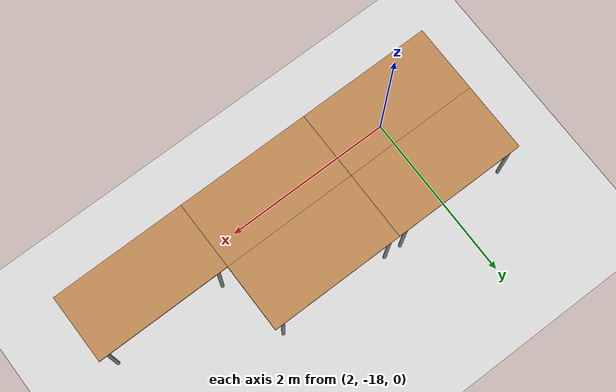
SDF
<sdf version="1.6">
 <world name="default">
  <model name="ground_plane">
   <static>1</static>
   <link name="link">
    <collision name="collision">
     <geometry><plane><normal>0 0 1</normal><size>100 100</size></plane></geometry>
     <surface><friction><ode><mu>100</mu><mu2>50</mu2></ode></friction></surface>
    </collision>
    <visual name="visual">
     <cast_shadows>0</cast_shadows>
     <geometry><plane><normal>0 0 1</normal><size>100 100</size></plane></geometry>
     <material>
      <script><uri>file://media/materials/scripts/gazebo.material</uri><name>Gazebo/Grey</name></script>
     </material>
    </visual>
   </link>
  </model>
  <model name="tablealt_0_clone_54">
   <link name="link">
    <inertial>
     <mass>1</mass>
     <inertia><ixx>1</ixx><ixy>0</ixy><ixz>0</ixz><iyy>1</iyy><iyz>0</iyz><izz>1</izz></inertia>
    </inertial>
    <visual name="back_right_leg">
     <pose>-0.68 -0.38 0.4 0 -0 0</pose>
     <geometry><cylinder><radius>0.02</radius><length>0.8</length></cylinder></geometry>
     <material>
      <script><uri>file://media/materials/scripts/gazebo.material</uri><name>Gazebo/Grey</name></script>
      <shader type="pixel"><normal_map>__default__</normal_map></shader>
      <ambient>0.3 0.3 0.3 1</ambient>
      <diffuse>0.7 0.7 0.7 1</diffuse>
      <specular>0.01 0.01 0.01 1</specular>
      <emissive>0 0 0 1</emissive>
     </material>
    </visual>
    <visual name="back_left_leg">
     <pose>-0.68 0.38 0.4 0 -0 0</pose>
     <geometry><cylinder><radius>0.02</radius><length>0.8</length></cylinder></geometry>
     <material>
      <script><uri>file://media/materials/scripts/gazebo.material</uri><name>Gazebo/Grey</name></script>
      <shader type="pixel"><normal_map>__default__</normal_map></shader>
      <ambient>0.3 0.3 0.3 1</ambient>
      <diffuse>0.7 0.7 0.7 1</diffuse>
      <specular>0.01 0.01 0.01 1</specular>
      <emissive>0 0 0 1</emissive>
     </material>
    </visual>
    <visual name="visual1">
     <pose>0 0 0.8 0 -0 0</pose>
     <geometry><box><size>1.57 0.8 0.03</size></box></geometry>
     <material>
      <script><uri>file://media/materials/scripts/gazebo.material</uri><name>Gazebo/Wood</name></script>
      <shader type="pixel"><normal_map>__default__</normal_map></shader>
      <ambient>0.92 0.92 0.68 1</ambient>
      <diffuse>1 1 1 1</diffuse>
      <specular>0.2 0.2 0.2 1</specular>
      <emissive>0 0 0 1</emissive>
     </material>
    </visual>
    <visual name="front_left_leg">
     <pose>0.68 0.38 0.4 0 -0 0</pose>
     <geometry><cylinder><radius>0.02</radius><length>0.8</length></cylinder></geometry>
     <material>
      <script><uri>file://media/materials/scripts/gazebo.material</uri><name>Gazebo/Grey</name></script>
      <shader type="pixel"><normal_map>__default__</normal_map></shader>
      <ambient>0.3 0.3 0.3 1</ambient>
      <diffuse>0.7 0.7 0.7 1</diffuse>
      <specular>0.01 0.01 0.01 1</specular>
      <emissive>0 0 0 1</emissive>
     </material>
    </visual>
    <visual name="front_right_leg">
     <pose>0.68 -0.38 0.4 0 -0 0</pose>
     <geometry><cylinder><radius>0.02</radius><length>0.8</length></cylinder></geometry>
     <material>
      <script><uri>file://media/materials/scripts/gazebo.material</uri><name>Gazebo/Grey</name></script>
      <shader type="pixel"><normal_map>__default__</normal_map></shader>
      <ambient>0.3 0.3 0.3 1</ambient>
      <diffuse>0.7 0.7 0.7 1</diffuse>
      <specular>0.01 0.01 0.01 1</specular>
      <emissive>0 0 0 1</emissive>
     </material>
    </visual>
    <collision name="front_right_leg">
     <pose>0.68 -0.38 0.4 0 -0 0</pose>
     <geometry><cylinder><radius>0.02</radius><length>0.8</length></cylinder></geometry>
     <surface>
      <friction>
       <ode><mu>1</mu><mu2>1</mu2><fdir1>0 0 0</fdir1><slip1>0</slip1><slip2>0</slip2></ode>
       <torsional>
        <coefficient>1</coefficient>
        <patch_radius>0</patch_radius>
        <surface_radius>0</surface_radius>
        <use_patch_radius>1</use_patch_radius>
        <ode><slip>0</slip></ode>
       </torsional>
      </friction>
      <bounce><restitution_coefficient>0</restitution_coefficient><threshold>1e+06</threshold></bounce>
      <contact>
       <collide_without_contact>0</collide_without_contact>
       <collide_without_contact_bitmask>1</collide_without_contact_bitmask>
       <collide_bitmask>1</collide_bitmask>
       <ode>
        <soft_cfm>0</soft_cfm>
        <soft_erp>0.2</soft_erp>
        <kp>1e+13</kp>
        <kd>1</kd>
        <max_vel>0.01</max_vel>
        <min_depth>0</min_depth>
       </ode>
       <bullet>
        <split_impulse>1</split_impulse>
        <split_impulse_penetration_threshold>-0.01</split_impulse_penetration_threshold>
        <soft_cfm>0</soft_cfm>
        <soft_erp>0.2</soft_erp>
        <kp>1e+13</kp>
        <kd>1</kd>
       </bullet>
      </contact>
     </surface>
    </collision>
    <collision name="surface">
     <pose>0 0 0.8 0 -0 0</pose>
     <geometry><box><size>1.5 0.8 0.03</size></box></geometry>
     <surface>
      <friction>
       <ode><mu>0.6</mu><mu2>0.6</mu2><fdir1>0 0 0</fdir1><slip1>0</slip1><slip2>0</slip2></ode>
       <torsional>
        <coefficient>1</coefficient>
        <patch_radius>0</patch_radius>
        <surface_radius>0</surface_radius>
        <use_patch_radius>1</use_patch_radius>
        <ode><slip>0</slip></ode>
       </torsional>
      </friction>
      <bounce><restitution_coefficient>0</restitution_coefficient><threshold>1e+06</threshold></bounce>
      <contact>
       <collide_without_contact>0</collide_without_contact>
       <collide_without_contact_bitmask>1</collide_without_contact_bitmask>
       <collide_bitmask>1</collide_bitmask>
       <ode>
        <soft_cfm>0</soft_cfm>
        <soft_erp>0.2</soft_erp>
        <kp>1e+13</kp>
        <kd>1</kd>
        <max_vel>0.01</max_vel>
        <min_depth>0</min_depth>
       </ode>
       <bullet>
        <split_impulse>1</split_impulse>
        <split_impulse_penetration_threshold>-0.01</split_impulse_penetration_threshold>
        <soft_cfm>0</soft_cfm>
        <soft_erp>0.2</soft_erp>
        <kp>1e+13</kp>
        <kd>1</kd>
       </bullet>
      </contact>
     </surface>
    </collision>
    <collision name="front_left_leg">
     <pose>0.68 0.38 0.4 0 -0 0</pose>
     <geometry><cylinder><radius>0.02</radius><length>0.8</length></cylinder></geometry>
     <surface>
      <friction>
       <ode><mu>1</mu><mu2>1</mu2><fdir1>0 0 0</fdir1><slip1>0</slip1><slip2>0</slip2></ode>
       <torsional>
        <coefficient>1</coefficient>
        <patch_radius>0</patch_radius>
        <surface_radius>0</surface_radius>
        <use_patch_radius>1</use_patch_radius>
        <ode><slip>0</slip></ode>
       </torsional>
      </friction>
      <bounce><restitution_coefficient>0</restitution_coefficient><threshold>1e+06</threshold></bounce>
      <contact>
       <collide_without_contact>0</collide_without_contact>
       <collide_without_contact_bitmask>1</collide_without_contact_bitmask>
       <collide_bitmask>1</collide_bitmask>
       <ode>
        <soft_cfm>0</soft_cfm>
        <soft_erp>0.2</soft_erp>
        <kp>1e+13</kp>
        <kd>1</kd>
        <max_vel>0.01</max_vel>
        <min_depth>0</min_depth>
       </ode>
       <bullet>
        <split_impulse>1</split_impulse>
        <split_impulse_penetration_threshold>-0.01</split_impulse_penetration_threshold>
        <soft_cfm>0</soft_cfm>
        <soft_erp>0.2</soft_erp>
        <kp>1e+13</kp>
        <kd>1</kd>
       </bullet>
      </contact>
     </surface>
    </collision>
    <collision name="back_left_leg">
     <pose>-0.68 0.38 0.4 0 -0 0</pose>
     <geometry><cylinder><radius>0.02</radius><length>0.8</length></cylinder></geometry>
     <surface>
      <friction>
       <ode><mu>1</mu><mu2>1</mu2><fdir1>0 0 0</fdir1><slip1>0</slip1><slip2>0</slip2></ode>
       <torsional>
        <coefficient>1</coefficient>
        <patch_radius>0</patch_radius>
        <surface_radius>0</surface_radius>
        <use_patch_radius>1</use_patch_radius>
        <ode><slip>0</slip></ode>
       </torsional>
      </friction>
      <bounce><restitution_coefficient>0</restitution_coefficient><threshold>1e+06</threshold></bounce>
      <contact>
       <collide_without_contact>0</collide_without_contact>
       <collide_without_contact_bitmask>1</collide_without_contact_bitmask>
       <collide_bitmask>1</collide_bitmask>
       <ode>
        <soft_cfm>0</soft_cfm>
        <soft_erp>0.2</soft_erp>
        <kp>1e+13</kp>
        <kd>1</kd>
        <max_vel>0.01</max_vel>
        <min_depth>0</min_depth>
       </ode>
       <bullet>
        <split_impulse>1</split_impulse>
        <split_impulse_penetration_threshold>-0.01</split_impulse_penetration_threshold>
        <soft_cfm>0</soft_cfm>
        <soft_erp>0.2</soft_erp>
        <kp>1e+13</kp>
        <kd>1</kd>
       </bullet>
      </contact>
     </surface>
    </collision>
    <collision name="back_right_leg">
     <pose>-0.68 -0.38 0.4 0 -0 0</pose>
     <geometry><cylinder><radius>0.02</radius><length>0.8</length></cylinder></geometry>
     <surface>
      <friction>
       <ode><mu>1</mu><mu2>1</mu2><fdir1>0 0 0</fdir1><slip1>0</slip1><slip2>0</slip2></ode>
       <torsional>
        <coefficient>1</coefficient>
        <patch_radius>0</patch_radius>
        <surface_radius>0</surface_radius>
        <use_patch_radius>1</use_patch_radius>
        <ode><slip>0</slip></ode>
       </torsional>
      </friction>
      <bounce><restitution_coefficient>0</restitution_coefficient><threshold>1e+06</threshold></bounce>
      <contact>
       <collide_without_contact>0</collide_without_contact>
       <collide_without_contact_bitmask>1</collide_without_contact_bitmask>
       <collide_bitmask>1</collide_bitmask>
       <ode>
        <soft_cfm>0</soft_cfm>
        <soft_erp>0.2</soft_erp>
        <kp>1e+13</kp>
        <kd>1</kd>
        <max_vel>0.01</max_vel>
        <min_depth>0</min_depth>
       </ode>
       <bullet>
        <split_impulse>1</split_impulse>
        <split_impulse_penetration_threshold>-0.01</split_impulse_penetration_threshold>
        <soft_cfm>0</soft_cfm>
        <soft_erp>0.2</soft_erp>
        <kp>1e+13</kp>
        <kd>1</kd>
       </bullet>
      </contact>
     </surface>
    </collision>
   </link>
   <static>1</static>
   <pose>1.98 -17.2 0 0 -0 0</pose>
  </model>
  <model name="tablealt_0_clone_55">
   <link name="link">
    <inertial>
     <mass>1</mass>
     <inertia><ixx>1</ixx><ixy>0</ixy><ixz>0</ixz><iyy>1</iyy><iyz>0</iyz><izz>1</izz></inertia>
    </inertial>
    <visual name="back_right_leg">
     <pose>-0.68 -0.38 0.4 0 -0 0</pose>
     <geometry><cylinder><radius>0.02</radius><length>0.8</length></cylinder></geometry>
     <material>
      <script><uri>file://media/materials/scripts/gazebo.material</uri><name>Gazebo/Grey</name></script>
      <shader type="pixel"><normal_map>__default__</normal_map></shader>
      <ambient>0.3 0.3 0.3 1</ambient>
      <diffuse>0.7 0.7 0.7 1</diffuse>
      <specular>0.01 0.01 0.01 1</specular>
      <emissive>0 0 0 1</emissive>
     </material>
    </visual>
    <visual name="back_left_leg">
     <pose>-0.68 0.38 0.4 0 -0 0</pose>
     <geometry><cylinder><radius>0.02</radius><length>0.8</length></cylinder></geometry>
     <material>
      <script><uri>file://media/materials/scripts/gazebo.material</uri><name>Gazebo/Grey</name></script>
      <shader type="pixel"><normal_map>__default__</normal_map></shader>
      <ambient>0.3 0.3 0.3 1</ambient>
      <diffuse>0.7 0.7 0.7 1</diffuse>
      <specular>0.01 0.01 0.01 1</specular>
      <emissive>0 0 0 1</emissive>
     </material>
    </visual>
    <visual name="visual1">
     <pose>0 0 0.8 0 -0 0</pose>
     <geometry><box><size>1.57 0.8 0.03</size></box></geometry>
     <material>
      <script><uri>file://media/materials/scripts/gazebo.material</uri><name>Gazebo/Wood</name></script>
      <shader type="pixel"><normal_map>__default__</normal_map></shader>
      <ambient>0.92 0.92 0.68 1</ambient>
      <diffuse>1 1 1 1</diffuse>
      <specular>0.2 0.2 0.2 1</specular>
      <emissive>0 0 0 1</emissive>
     </material>
    </visual>
    <visual name="front_left_leg">
     <pose>0.68 0.38 0.4 0 -0 0</pose>
     <geometry><cylinder><radius>0.02</radius><length>0.8</length></cylinder></geometry>
     <material>
      <script><uri>file://media/materials/scripts/gazebo.material</uri><name>Gazebo/Grey</name></script>
      <shader type="pixel"><normal_map>__default__</normal_map></shader>
      <ambient>0.3 0.3 0.3 1</ambient>
      <diffuse>0.7 0.7 0.7 1</diffuse>
      <specular>0.01 0.01 0.01 1</specular>
      <emissive>0 0 0 1</emissive>
     </material>
    </visual>
    <visual name="front_right_leg">
     <pose>0.68 -0.38 0.4 0 -0 0</pose>
     <geometry><cylinder><radius>0.02</radius><length>0.8</length></cylinder></geometry>
     <material>
      <script><uri>file://media/materials/scripts/gazebo.material</uri><name>Gazebo/Grey</name></script>
      <shader type="pixel"><normal_map>__default__</normal_map></shader>
      <ambient>0.3 0.3 0.3 1</ambient>
      <diffuse>0.7 0.7 0.7 1</diffuse>
      <specular>0.01 0.01 0.01 1</specular>
      <emissive>0 0 0 1</emissive>
     </material>
    </visual>
    <collision name="front_right_leg">
     <pose>0.68 -0.38 0.4 0 -0 0</pose>
     <geometry><cylinder><radius>0.02</radius><length>0.8</length></cylinder></geometry>
     <surface>
      <friction>
       <ode><mu>1</mu><mu2>1</mu2><fdir1>0 0 0</fdir1><slip1>0</slip1><slip2>0</slip2></ode>
       <torsional>
        <coefficient>1</coefficient>
        <patch_radius>0</patch_radius>
        <surface_radius>0</surface_radius>
        <use_patch_radius>1</use_patch_radius>
        <ode><slip>0</slip></ode>
       </torsional>
      </friction>
      <bounce><restitution_coefficient>0</restitution_coefficient><threshold>1e+06</threshold></bounce>
      <contact>
       <collide_without_contact>0</collide_without_contact>
       <collide_without_contact_bitmask>1</collide_without_contact_bitmask>
       <collide_bitmask>1</collide_bitmask>
       <ode>
        <soft_cfm>0</soft_cfm>
        <soft_erp>0.2</soft_erp>
        <kp>1e+13</kp>
        <kd>1</kd>
        <max_vel>0.01</max_vel>
        <min_depth>0</min_depth>
       </ode>
       <bullet>
        <split_impulse>1</split_impulse>
        <split_impulse_penetration_threshold>-0.01</split_impulse_penetration_threshold>
        <soft_cfm>0</soft_cfm>
        <soft_erp>0.2</soft_erp>
        <kp>1e+13</kp>
        <kd>1</kd>
       </bullet>
      </contact>
     </surface>
    </collision>
    <collision name="surface">
     <pose>0 0 0.8 0 -0 0</pose>
     <geometry><box><size>1.5 0.8 0.03</size></box></geometry>
     <surface>
      <friction>
       <ode><mu>0.6</mu><mu2>0.6</mu2><fdir1>0 0 0</fdir1><slip1>0</slip1><slip2>0</slip2></ode>
       <torsional>
        <coefficient>1</coefficient>
        <patch_radius>0</patch_radius>
        <surface_radius>0</surface_radius>
        <use_patch_radius>1</use_patch_radius>
        <ode><slip>0</slip></ode>
       </torsional>
      </friction>
      <bounce><restitution_coefficient>0</restitution_coefficient><threshold>1e+06</threshold></bounce>
      <contact>
       <collide_without_contact>0</collide_without_contact>
       <collide_without_contact_bitmask>1</collide_without_contact_bitmask>
       <collide_bitmask>1</collide_bitmask>
       <ode>
        <soft_cfm>0</soft_cfm>
        <soft_erp>0.2</soft_erp>
        <kp>1e+13</kp>
        <kd>1</kd>
        <max_vel>0.01</max_vel>
        <min_depth>0</min_depth>
       </ode>
       <bullet>
        <split_impulse>1</split_impulse>
        <split_impulse_penetration_threshold>-0.01</split_impulse_penetration_threshold>
        <soft_cfm>0</soft_cfm>
        <soft_erp>0.2</soft_erp>
        <kp>1e+13</kp>
        <kd>1</kd>
       </bullet>
      </contact>
     </surface>
    </collision>
    <collision name="front_left_leg">
     <pose>0.68 0.38 0.4 0 -0 0</pose>
     <geometry><cylinder><radius>0.02</radius><length>0.8</length></cylinder></geometry>
     <surface>
      <friction>
       <ode><mu>1</mu><mu2>1</mu2><fdir1>0 0 0</fdir1><slip1>0</slip1><slip2>0</slip2></ode>
       <torsional>
        <coefficient>1</coefficient>
        <patch_radius>0</patch_radius>
        <surface_radius>0</surface_radius>
        <use_patch_radius>1</use_patch_radius>
        <ode><slip>0</slip></ode>
       </torsional>
      </friction>
      <bounce><restitution_coefficient>0</restitution_coefficient><threshold>1e+06</threshold></bounce>
      <contact>
       <collide_without_contact>0</collide_without_contact>
       <collide_without_contact_bitmask>1</collide_without_contact_bitmask>
       <collide_bitmask>1</collide_bitmask>
       <ode>
        <soft_cfm>0</soft_cfm>
        <soft_erp>0.2</soft_erp>
        <kp>1e+13</kp>
        <kd>1</kd>
        <max_vel>0.01</max_vel>
        <min_depth>0</min_depth>
       </ode>
       <bullet>
        <split_impulse>1</split_impulse>
        <split_impulse_penetration_threshold>-0.01</split_impulse_penetration_threshold>
        <soft_cfm>0</soft_cfm>
        <soft_erp>0.2</soft_erp>
        <kp>1e+13</kp>
        <kd>1</kd>
       </bullet>
      </contact>
     </surface>
    </collision>
    <collision name="back_left_leg">
     <pose>-0.68 0.38 0.4 0 -0 0</pose>
     <geometry><cylinder><radius>0.02</radius><length>0.8</length></cylinder></geometry>
     <surface>
      <friction>
       <ode><mu>1</mu><mu2>1</mu2><fdir1>0 0 0</fdir1><slip1>0</slip1><slip2>0</slip2></ode>
       <torsional>
        <coefficient>1</coefficient>
        <patch_radius>0</patch_radius>
        <surface_radius>0</surface_radius>
        <use_patch_radius>1</use_patch_radius>
        <ode><slip>0</slip></ode>
       </torsional>
      </friction>
      <bounce><restitution_coefficient>0</restitution_coefficient><threshold>1e+06</threshold></bounce>
      <contact>
       <collide_without_contact>0</collide_without_contact>
       <collide_without_contact_bitmask>1</collide_without_contact_bitmask>
       <collide_bitmask>1</collide_bitmask>
       <ode>
        <soft_cfm>0</soft_cfm>
        <soft_erp>0.2</soft_erp>
        <kp>1e+13</kp>
        <kd>1</kd>
        <max_vel>0.01</max_vel>
        <min_depth>0</min_depth>
       </ode>
       <bullet>
        <split_impulse>1</split_impulse>
        <split_impulse_penetration_threshold>-0.01</split_impulse_penetration_threshold>
        <soft_cfm>0</soft_cfm>
        <soft_erp>0.2</soft_erp>
        <kp>1e+13</kp>
        <kd>1</kd>
       </bullet>
      </contact>
     </surface>
    </collision>
    <collision name="back_right_leg">
     <pose>-0.68 -0.38 0.4 0 -0 0</pose>
     <geometry><cylinder><radius>0.02</radius><length>0.8</length></cylinder></geometry>
     <surface>
      <friction>
       <ode><mu>1</mu><mu2>1</mu2><fdir1>0 0 0</fdir1><slip1>0</slip1><slip2>0</slip2></ode>
       <torsional>
        <coefficient>1</coefficient>
        <patch_radius>0</patch_radius>
        <surface_radius>0</surface_radius>
        <use_patch_radius>1</use_patch_radius>
        <ode><slip>0</slip></ode>
       </torsional>
      </friction>
      <bounce><restitution_coefficient>0</restitution_coefficient><threshold>1e+06</threshold></bounce>
      <contact>
       <collide_without_contact>0</collide_without_contact>
       <collide_without_contact_bitmask>1</collide_without_contact_bitmask>
       <collide_bitmask>1</collide_bitmask>
       <ode>
        <soft_cfm>0</soft_cfm>
        <soft_erp>0.2</soft_erp>
        <kp>1e+13</kp>
        <kd>1</kd>
        <max_vel>0.01</max_vel>
        <min_depth>0</min_depth>
       </ode>
       <bullet>
        <split_impulse>1</split_impulse>
        <split_impulse_penetration_threshold>-0.01</split_impulse_penetration_threshold>
        <soft_cfm>0</soft_cfm>
        <soft_erp>0.2</soft_erp>
        <kp>1e+13</kp>
        <kd>1</kd>
       </bullet>
      </contact>
     </surface>
    </collision>
   </link>
   <static>1</static>
   <pose>3.55 -17.2 0 0 -0 0</pose>
  </model>
  <model name="tablealt_0_clone_57">
   <link name="link">
    <inertial>
     <mass>1</mass>
     <inertia><ixx>1</ixx><ixy>0</ixy><ixz>0</ixz><iyy>1</iyy><iyz>0</iyz><izz>1</izz></inertia>
    </inertial>
    <visual name="back_right_leg">
     <pose>-0.68 -0.38 0.4 0 -0 0</pose>
     <geometry><cylinder><radius>0.02</radius><length>0.8</length></cylinder></geometry>
     <material>
      <script><uri>file://media/materials/scripts/gazebo.material</uri><name>Gazebo/Grey</name></script>
      <shader type="pixel"><normal_map>__default__</normal_map></shader>
      <ambient>0.3 0.3 0.3 1</ambient>
      <diffuse>0.7 0.7 0.7 1</diffuse>
      <specular>0.01 0.01 0.01 1</specular>
      <emissive>0 0 0 1</emissive>
     </material>
    </visual>
    <visual name="back_left_leg">
     <pose>-0.68 0.38 0.4 0 -0 0</pose>
     <geometry><cylinder><radius>0.02</radius><length>0.8</length></cylinder></geometry>
     <material>
      <script><uri>file://media/materials/scripts/gazebo.material</uri><name>Gazebo/Grey</name></script>
      <shader type="pixel"><normal_map>__default__</normal_map></shader>
      <ambient>0.3 0.3 0.3 1</ambient>
      <diffuse>0.7 0.7 0.7 1</diffuse>
      <specular>0.01 0.01 0.01 1</specular>
      <emissive>0 0 0 1</emissive>
     </material>
    </visual>
    <visual name="visual1">
     <pose>0 0 0.8 0 -0 0</pose>
     <geometry><box><size>1.57 0.8 0.03</size></box></geometry>
     <material>
      <script><uri>file://media/materials/scripts/gazebo.material</uri><name>Gazebo/Wood</name></script>
      <shader type="pixel"><normal_map>__default__</normal_map></shader>
      <ambient>0.92 0.92 0.68 1</ambient>
      <diffuse>1 1 1 1</diffuse>
      <specular>0.2 0.2 0.2 1</specular>
      <emissive>0 0 0 1</emissive>
     </material>
    </visual>
    <visual name="front_left_leg">
     <pose>0.68 0.38 0.4 0 -0 0</pose>
     <geometry><cylinder><radius>0.02</radius><length>0.8</length></cylinder></geometry>
     <material>
      <script><uri>file://media/materials/scripts/gazebo.material</uri><name>Gazebo/Grey</name></script>
      <shader type="pixel"><normal_map>__default__</normal_map></shader>
      <ambient>0.3 0.3 0.3 1</ambient>
      <diffuse>0.7 0.7 0.7 1</diffuse>
      <specular>0.01 0.01 0.01 1</specular>
      <emissive>0 0 0 1</emissive>
     </material>
    </visual>
    <visual name="front_right_leg">
     <pose>0.68 -0.38 0.4 0 -0 0</pose>
     <geometry><cylinder><radius>0.02</radius><length>0.8</length></cylinder></geometry>
     <material>
      <script><uri>file://media/materials/scripts/gazebo.material</uri><name>Gazebo/Grey</name></script>
      <shader type="pixel"><normal_map>__default__</normal_map></shader>
      <ambient>0.3 0.3 0.3 1</ambient>
      <diffuse>0.7 0.7 0.7 1</diffuse>
      <specular>0.01 0.01 0.01 1</specular>
      <emissive>0 0 0 1</emissive>
     </material>
    </visual>
    <collision name="front_right_leg">
     <pose>0.68 -0.38 0.4 0 -0 0</pose>
     <geometry><cylinder><radius>0.02</radius><length>0.8</length></cylinder></geometry>
     <surface>
      <friction>
       <ode><mu>1</mu><mu2>1</mu2><fdir1>0 0 0</fdir1><slip1>0</slip1><slip2>0</slip2></ode>
       <torsional>
        <coefficient>1</coefficient>
        <patch_radius>0</patch_radius>
        <surface_radius>0</surface_radius>
        <use_patch_radius>1</use_patch_radius>
        <ode><slip>0</slip></ode>
       </torsional>
      </friction>
      <bounce><restitution_coefficient>0</restitution_coefficient><threshold>1e+06</threshold></bounce>
      <contact>
       <collide_without_contact>0</collide_without_contact>
       <collide_without_contact_bitmask>1</collide_without_contact_bitmask>
       <collide_bitmask>1</collide_bitmask>
       <ode>
        <soft_cfm>0</soft_cfm>
        <soft_erp>0.2</soft_erp>
        <kp>1e+13</kp>
        <kd>1</kd>
        <max_vel>0.01</max_vel>
        <min_depth>0</min_depth>
       </ode>
       <bullet>
        <split_impulse>1</split_impulse>
        <split_impulse_penetration_threshold>-0.01</split_impulse_penetration_threshold>
        <soft_cfm>0</soft_cfm>
        <soft_erp>0.2</soft_erp>
        <kp>1e+13</kp>
        <kd>1</kd>
       </bullet>
      </contact>
     </surface>
    </collision>
    <collision name="surface">
     <pose>0 0 0.8 0 -0 0</pose>
     <geometry><box><size>1.5 0.8 0.03</size></box></geometry>
     <surface>
      <friction>
       <ode><mu>0.6</mu><mu2>0.6</mu2><fdir1>0 0 0</fdir1><slip1>0</slip1><slip2>0</slip2></ode>
       <torsional>
        <coefficient>1</coefficient>
        <patch_radius>0</patch_radius>
        <surface_radius>0</surface_radius>
        <use_patch_radius>1</use_patch_radius>
        <ode><slip>0</slip></ode>
       </torsional>
      </friction>
      <bounce><restitution_coefficient>0</restitution_coefficient><threshold>1e+06</threshold></bounce>
      <contact>
       <collide_without_contact>0</collide_without_contact>
       <collide_without_contact_bitmask>1</collide_without_contact_bitmask>
       <collide_bitmask>1</collide_bitmask>
       <ode>
        <soft_cfm>0</soft_cfm>
        <soft_erp>0.2</soft_erp>
        <kp>1e+13</kp>
        <kd>1</kd>
        <max_vel>0.01</max_vel>
        <min_depth>0</min_depth>
       </ode>
       <bullet>
        <split_impulse>1</split_impulse>
        <split_impulse_penetration_threshold>-0.01</split_impulse_penetration_threshold>
        <soft_cfm>0</soft_cfm>
        <soft_erp>0.2</soft_erp>
        <kp>1e+13</kp>
        <kd>1</kd>
       </bullet>
      </contact>
     </surface>
    </collision>
    <collision name="front_left_leg">
     <pose>0.68 0.38 0.4 0 -0 0</pose>
     <geometry><cylinder><radius>0.02</radius><length>0.8</length></cylinder></geometry>
     <surface>
      <friction>
       <ode><mu>1</mu><mu2>1</mu2><fdir1>0 0 0</fdir1><slip1>0</slip1><slip2>0</slip2></ode>
       <torsional>
        <coefficient>1</coefficient>
        <patch_radius>0</patch_radius>
        <surface_radius>0</surface_radius>
        <use_patch_radius>1</use_patch_radius>
        <ode><slip>0</slip></ode>
       </torsional>
      </friction>
      <bounce><restitution_coefficient>0</restitution_coefficient><threshold>1e+06</threshold></bounce>
      <contact>
       <collide_without_contact>0</collide_without_contact>
       <collide_without_contact_bitmask>1</collide_without_contact_bitmask>
       <collide_bitmask>1</collide_bitmask>
       <ode>
        <soft_cfm>0</soft_cfm>
        <soft_erp>0.2</soft_erp>
        <kp>1e+13</kp>
        <kd>1</kd>
        <max_vel>0.01</max_vel>
        <min_depth>0</min_depth>
       </ode>
       <bullet>
        <split_impulse>1</split_impulse>
        <split_impulse_penetration_threshold>-0.01</split_impulse_penetration_threshold>
        <soft_cfm>0</soft_cfm>
        <soft_erp>0.2</soft_erp>
        <kp>1e+13</kp>
        <kd>1</kd>
       </bullet>
      </contact>
     </surface>
    </collision>
    <collision name="back_left_leg">
     <pose>-0.68 0.38 0.4 0 -0 0</pose>
     <geometry><cylinder><radius>0.02</radius><length>0.8</length></cylinder></geometry>
     <surface>
      <friction>
       <ode><mu>1</mu><mu2>1</mu2><fdir1>0 0 0</fdir1><slip1>0</slip1><slip2>0</slip2></ode>
       <torsional>
        <coefficient>1</coefficient>
        <patch_radius>0</patch_radius>
        <surface_radius>0</surface_radius>
        <use_patch_radius>1</use_patch_radius>
        <ode><slip>0</slip></ode>
       </torsional>
      </friction>
      <bounce><restitution_coefficient>0</restitution_coefficient><threshold>1e+06</threshold></bounce>
      <contact>
       <collide_without_contact>0</collide_without_contact>
       <collide_without_contact_bitmask>1</collide_without_contact_bitmask>
       <collide_bitmask>1</collide_bitmask>
       <ode>
        <soft_cfm>0</soft_cfm>
        <soft_erp>0.2</soft_erp>
        <kp>1e+13</kp>
        <kd>1</kd>
        <max_vel>0.01</max_vel>
        <min_depth>0</min_depth>
       </ode>
       <bullet>
        <split_impulse>1</split_impulse>
        <split_impulse_penetration_threshold>-0.01</split_impulse_penetration_threshold>
        <soft_cfm>0</soft_cfm>
        <soft_erp>0.2</soft_erp>
        <kp>1e+13</kp>
        <kd>1</kd>
       </bullet>
      </contact>
     </surface>
    </collision>
    <collision name="back_right_leg">
     <pose>-0.68 -0.38 0.4 0 -0 0</pose>
     <geometry><cylinder><radius>0.02</radius><length>0.8</length></cylinder></geometry>
     <surface>
      <friction>
       <ode><mu>1</mu><mu2>1</mu2><fdir1>0 0 0</fdir1><slip1>0</slip1><slip2>0</slip2></ode>
       <torsional>
        <coefficient>1</coefficient>
        <patch_radius>0</patch_radius>
        <surface_radius>0</surface_radius>
        <use_patch_radius>1</use_patch_radius>
        <ode><slip>0</slip></ode>
       </torsional>
      </friction>
      <bounce><restitution_coefficient>0</restitution_coefficient><threshold>1e+06</threshold></bounce>
      <contact>
       <collide_without_contact>0</collide_without_contact>
       <collide_without_contact_bitmask>1</collide_without_contact_bitmask>
       <collide_bitmask>1</collide_bitmask>
       <ode>
        <soft_cfm>0</soft_cfm>
        <soft_erp>0.2</soft_erp>
        <kp>1e+13</kp>
        <kd>1</kd>
        <max_vel>0.01</max_vel>
        <min_depth>0</min_depth>
       </ode>
       <bullet>
        <split_impulse>1</split_impulse>
        <split_impulse_penetration_threshold>-0.01</split_impulse_penetration_threshold>
        <soft_cfm>0</soft_cfm>
        <soft_erp>0.2</soft_erp>
        <kp>1e+13</kp>
        <kd>1</kd>
       </bullet>
      </contact>
     </surface>
    </collision>
   </link>
   <static>1</static>
   <pose>5.12 -18 0 0 -0 0</pose>
  </model>
  <model name="tablealt_0_clone_58">
   <link name="link">
    <inertial>
     <mass>1</mass>
     <inertia><ixx>1</ixx><ixy>0</ixy><ixz>0</ixz><iyy>1</iyy><iyz>0</iyz><izz>1</izz></inertia>
    </inertial>
    <visual name="back_right_leg">
     <pose>-0.68 -0.38 0.4 0 -0 0</pose>
     <geometry><cylinder><radius>0.02</radius><length>0.8</length></cylinder></geometry>
     <material>
      <script><uri>file://media/materials/scripts/gazebo.material</uri><name>Gazebo/Grey</name></script>
      <shader type="pixel"><normal_map>__default__</normal_map></shader>
      <ambient>0.3 0.3 0.3 1</ambient>
      <diffuse>0.7 0.7 0.7 1</diffuse>
      <specular>0.01 0.01 0.01 1</specular>
      <emissive>0 0 0 1</emissive>
     </material>
    </visual>
    <visual name="back_left_leg">
     <pose>-0.68 0.38 0.4 0 -0 0</pose>
     <geometry><cylinder><radius>0.02</radius><length>0.8</length></cylinder></geometry>
     <material>
      <script><uri>file://media/materials/scripts/gazebo.material</uri><name>Gazebo/Grey</name></script>
      <shader type="pixel"><normal_map>__default__</normal_map></shader>
      <ambient>0.3 0.3 0.3 1</ambient>
      <diffuse>0.7 0.7 0.7 1</diffuse>
      <specular>0.01 0.01 0.01 1</specular>
      <emissive>0 0 0 1</emissive>
     </material>
    </visual>
    <visual name="visual1">
     <pose>0 0 0.8 0 -0 0</pose>
     <geometry><box><size>1.57 0.8 0.03</size></box></geometry>
     <material>
      <script><uri>file://media/materials/scripts/gazebo.material</uri><name>Gazebo/Wood</name></script>
      <shader type="pixel"><normal_map>__default__</normal_map></shader>
      <ambient>0.92 0.92 0.68 1</ambient>
      <diffuse>1 1 1 1</diffuse>
      <specular>0.2 0.2 0.2 1</specular>
      <emissive>0 0 0 1</emissive>
     </material>
    </visual>
    <visual name="front_left_leg">
     <pose>0.68 0.38 0.4 0 -0 0</pose>
     <geometry><cylinder><radius>0.02</radius><length>0.8</length></cylinder></geometry>
     <material>
      <script><uri>file://media/materials/scripts/gazebo.material</uri><name>Gazebo/Grey</name></script>
      <shader type="pixel"><normal_map>__default__</normal_map></shader>
      <ambient>0.3 0.3 0.3 1</ambient>
      <diffuse>0.7 0.7 0.7 1</diffuse>
      <specular>0.01 0.01 0.01 1</specular>
      <emissive>0 0 0 1</emissive>
     </material>
    </visual>
    <visual name="front_right_leg">
     <pose>0.68 -0.38 0.4 0 -0 0</pose>
     <geometry><cylinder><radius>0.02</radius><length>0.8</length></cylinder></geometry>
     <material>
      <script><uri>file://media/materials/scripts/gazebo.material</uri><name>Gazebo/Grey</name></script>
      <shader type="pixel"><normal_map>__default__</normal_map></shader>
      <ambient>0.3 0.3 0.3 1</ambient>
      <diffuse>0.7 0.7 0.7 1</diffuse>
      <specular>0.01 0.01 0.01 1</specular>
      <emissive>0 0 0 1</emissive>
     </material>
    </visual>
    <collision name="front_right_leg">
     <pose>0.68 -0.38 0.4 0 -0 0</pose>
     <geometry><cylinder><radius>0.02</radius><length>0.8</length></cylinder></geometry>
     <surface>
      <friction>
       <ode><mu>1</mu><mu2>1</mu2><fdir1>0 0 0</fdir1><slip1>0</slip1><slip2>0</slip2></ode>
       <torsional>
        <coefficient>1</coefficient>
        <patch_radius>0</patch_radius>
        <surface_radius>0</surface_radius>
        <use_patch_radius>1</use_patch_radius>
        <ode><slip>0</slip></ode>
       </torsional>
      </friction>
      <bounce><restitution_coefficient>0</restitution_coefficient><threshold>1e+06</threshold></bounce>
      <contact>
       <collide_without_contact>0</collide_without_contact>
       <collide_without_contact_bitmask>1</collide_without_contact_bitmask>
       <collide_bitmask>1</collide_bitmask>
       <ode>
        <soft_cfm>0</soft_cfm>
        <soft_erp>0.2</soft_erp>
        <kp>1e+13</kp>
        <kd>1</kd>
        <max_vel>0.01</max_vel>
        <min_depth>0</min_depth>
       </ode>
       <bullet>
        <split_impulse>1</split_impulse>
        <split_impulse_penetration_threshold>-0.01</split_impulse_penetration_threshold>
        <soft_cfm>0</soft_cfm>
        <soft_erp>0.2</soft_erp>
        <kp>1e+13</kp>
        <kd>1</kd>
       </bullet>
      </contact>
     </surface>
    </collision>
    <collision name="surface">
     <pose>0 0 0.8 0 -0 0</pose>
     <geometry><box><size>1.5 0.8 0.03</size></box></geometry>
     <surface>
      <friction>
       <ode><mu>0.6</mu><mu2>0.6</mu2><fdir1>0 0 0</fdir1><slip1>0</slip1><slip2>0</slip2></ode>
       <torsional>
        <coefficient>1</coefficient>
        <patch_radius>0</patch_radius>
        <surface_radius>0</surface_radius>
        <use_patch_radius>1</use_patch_radius>
        <ode><slip>0</slip></ode>
       </torsional>
      </friction>
      <bounce><restitution_coefficient>0</restitution_coefficient><threshold>1e+06</threshold></bounce>
      <contact>
       <collide_without_contact>0</collide_without_contact>
       <collide_without_contact_bitmask>1</collide_without_contact_bitmask>
       <collide_bitmask>1</collide_bitmask>
       <ode>
        <soft_cfm>0</soft_cfm>
        <soft_erp>0.2</soft_erp>
        <kp>1e+13</kp>
        <kd>1</kd>
        <max_vel>0.01</max_vel>
        <min_depth>0</min_depth>
       </ode>
       <bullet>
        <split_impulse>1</split_impulse>
        <split_impulse_penetration_threshold>-0.01</split_impulse_penetration_threshold>
        <soft_cfm>0</soft_cfm>
        <soft_erp>0.2</soft_erp>
        <kp>1e+13</kp>
        <kd>1</kd>
       </bullet>
      </contact>
     </surface>
    </collision>
    <collision name="front_left_leg">
     <pose>0.68 0.38 0.4 0 -0 0</pose>
     <geometry><cylinder><radius>0.02</radius><length>0.8</length></cylinder></geometry>
     <surface>
      <friction>
       <ode><mu>1</mu><mu2>1</mu2><fdir1>0 0 0</fdir1><slip1>0</slip1><slip2>0</slip2></ode>
       <torsional>
        <coefficient>1</coefficient>
        <patch_radius>0</patch_radius>
        <surface_radius>0</surface_radius>
        <use_patch_radius>1</use_patch_radius>
        <ode><slip>0</slip></ode>
       </torsional>
      </friction>
      <bounce><restitution_coefficient>0</restitution_coefficient><threshold>1e+06</threshold></bounce>
      <contact>
       <collide_without_contact>0</collide_without_contact>
       <collide_without_contact_bitmask>1</collide_without_contact_bitmask>
       <collide_bitmask>1</collide_bitmask>
       <ode>
        <soft_cfm>0</soft_cfm>
        <soft_erp>0.2</soft_erp>
        <kp>1e+13</kp>
        <kd>1</kd>
        <max_vel>0.01</max_vel>
        <min_depth>0</min_depth>
       </ode>
       <bullet>
        <split_impulse>1</split_impulse>
        <split_impulse_penetration_threshold>-0.01</split_impulse_penetration_threshold>
        <soft_cfm>0</soft_cfm>
        <soft_erp>0.2</soft_erp>
        <kp>1e+13</kp>
        <kd>1</kd>
       </bullet>
      </contact>
     </surface>
    </collision>
    <collision name="back_left_leg">
     <pose>-0.68 0.38 0.4 0 -0 0</pose>
     <geometry><cylinder><radius>0.02</radius><length>0.8</length></cylinder></geometry>
     <surface>
      <friction>
       <ode><mu>1</mu><mu2>1</mu2><fdir1>0 0 0</fdir1><slip1>0</slip1><slip2>0</slip2></ode>
       <torsional>
        <coefficient>1</coefficient>
        <patch_radius>0</patch_radius>
        <surface_radius>0</surface_radius>
        <use_patch_radius>1</use_patch_radius>
        <ode><slip>0</slip></ode>
       </torsional>
      </friction>
      <bounce><restitution_coefficient>0</restitution_coefficient><threshold>1e+06</threshold></bounce>
      <contact>
       <collide_without_contact>0</collide_without_contact>
       <collide_without_contact_bitmask>1</collide_without_contact_bitmask>
       <collide_bitmask>1</collide_bitmask>
       <ode>
        <soft_cfm>0</soft_cfm>
        <soft_erp>0.2</soft_erp>
        <kp>1e+13</kp>
        <kd>1</kd>
        <max_vel>0.01</max_vel>
        <min_depth>0</min_depth>
       </ode>
       <bullet>
        <split_impulse>1</split_impulse>
        <split_impulse_penetration_threshold>-0.01</split_impulse_penetration_threshold>
        <soft_cfm>0</soft_cfm>
        <soft_erp>0.2</soft_erp>
        <kp>1e+13</kp>
        <kd>1</kd>
       </bullet>
      </contact>
     </surface>
    </collision>
    <collision name="back_right_leg">
     <pose>-0.68 -0.38 0.4 0 -0 0</pose>
     <geometry><cylinder><radius>0.02</radius><length>0.8</length></cylinder></geometry>
     <surface>
      <friction>
       <ode><mu>1</mu><mu2>1</mu2><fdir1>0 0 0</fdir1><slip1>0</slip1><slip2>0</slip2></ode>
       <torsional>
        <coefficient>1</coefficient>
        <patch_radius>0</patch_radius>
        <surface_radius>0</surface_radius>
        <use_patch_radius>1</use_patch_radius>
        <ode><slip>0</slip></ode>
       </torsional>
      </friction>
      <bounce><restitution_coefficient>0</restitution_coefficient><threshold>1e+06</threshold></bounce>
      <contact>
       <collide_without_contact>0</collide_without_contact>
       <collide_without_contact_bitmask>1</collide_without_contact_bitmask>
       <collide_bitmask>1</collide_bitmask>
       <ode>
        <soft_cfm>0</soft_cfm>
        <soft_erp>0.2</soft_erp>
        <kp>1e+13</kp>
        <kd>1</kd>
        <max_vel>0.01</max_vel>
        <min_depth>0</min_depth>
       </ode>
       <bullet>
        <split_impulse>1</split_impulse>
        <split_impulse_penetration_threshold>-0.01</split_impulse_penetration_threshold>
        <soft_cfm>0</soft_cfm>
        <soft_erp>0.2</soft_erp>
        <kp>1e+13</kp>
        <kd>1</kd>
       </bullet>
      </contact>
     </surface>
    </collision>
   </link>
   <static>1</static>
   <pose>3.55 -18 0 0 -0 0</pose>
  </model>
  <model name="tablealt_0_clone_59">
   <link name="link">
    <inertial>
     <mass>1</mass>
     <inertia><ixx>1</ixx><ixy>0</ixy><ixz>0</ixz><iyy>1</iyy><iyz>0</iyz><izz>1</izz></inertia>
    </inertial>
    <visual name="back_right_leg">
     <pose>-0.68 -0.38 0.4 0 -0 0</pose>
     <geometry><cylinder><radius>0.02</radius><length>0.8</length></cylinder></geometry>
     <material>
      <script><uri>file://media/materials/scripts/gazebo.material</uri><name>Gazebo/Grey</name></script>
      <shader type="pixel"><normal_map>__default__</normal_map></shader>
      <ambient>0.3 0.3 0.3 1</ambient>
      <diffuse>0.7 0.7 0.7 1</diffuse>
      <specular>0.01 0.01 0.01 1</specular>
      <emissive>0 0 0 1</emissive>
     </material>
    </visual>
    <visual name="back_left_leg">
     <pose>-0.68 0.38 0.4 0 -0 0</pose>
     <geometry><cylinder><radius>0.02</radius><length>0.8</length></cylinder></geometry>
     <material>
      <script><uri>file://media/materials/scripts/gazebo.material</uri><name>Gazebo/Grey</name></script>
      <shader type="pixel"><normal_map>__default__</normal_map></shader>
      <ambient>0.3 0.3 0.3 1</ambient>
      <diffuse>0.7 0.7 0.7 1</diffuse>
      <specular>0.01 0.01 0.01 1</specular>
      <emissive>0 0 0 1</emissive>
     </material>
    </visual>
    <visual name="visual1">
     <pose>0 0 0.8 0 -0 0</pose>
     <geometry><box><size>1.57 0.8 0.03</size></box></geometry>
     <material>
      <script><uri>file://media/materials/scripts/gazebo.material</uri><name>Gazebo/Wood</name></script>
      <shader type="pixel"><normal_map>__default__</normal_map></shader>
      <ambient>0.92 0.92 0.68 1</ambient>
      <diffuse>1 1 1 1</diffuse>
      <specular>0.2 0.2 0.2 1</specular>
      <emissive>0 0 0 1</emissive>
     </material>
    </visual>
    <visual name="front_left_leg">
     <pose>0.68 0.38 0.4 0 -0 0</pose>
     <geometry><cylinder><radius>0.02</radius><length>0.8</length></cylinder></geometry>
     <material>
      <script><uri>file://media/materials/scripts/gazebo.material</uri><name>Gazebo/Grey</name></script>
      <shader type="pixel"><normal_map>__default__</normal_map></shader>
      <ambient>0.3 0.3 0.3 1</ambient>
      <diffuse>0.7 0.7 0.7 1</diffuse>
      <specular>0.01 0.01 0.01 1</specular>
      <emissive>0 0 0 1</emissive>
     </material>
    </visual>
    <visual name="front_right_leg">
     <pose>0.68 -0.38 0.4 0 -0 0</pose>
     <geometry><cylinder><radius>0.02</radius><length>0.8</length></cylinder></geometry>
     <material>
      <script><uri>file://media/materials/scripts/gazebo.material</uri><name>Gazebo/Grey</name></script>
      <shader type="pixel"><normal_map>__default__</normal_map></shader>
      <ambient>0.3 0.3 0.3 1</ambient>
      <diffuse>0.7 0.7 0.7 1</diffuse>
      <specular>0.01 0.01 0.01 1</specular>
      <emissive>0 0 0 1</emissive>
     </material>
    </visual>
    <collision name="front_right_leg">
     <pose>0.68 -0.38 0.4 0 -0 0</pose>
     <geometry><cylinder><radius>0.02</radius><length>0.8</length></cylinder></geometry>
     <surface>
      <friction>
       <ode><mu>1</mu><mu2>1</mu2><fdir1>0 0 0</fdir1><slip1>0</slip1><slip2>0</slip2></ode>
       <torsional>
        <coefficient>1</coefficient>
        <patch_radius>0</patch_radius>
        <surface_radius>0</surface_radius>
        <use_patch_radius>1</use_patch_radius>
        <ode><slip>0</slip></ode>
       </torsional>
      </friction>
      <bounce><restitution_coefficient>0</restitution_coefficient><threshold>1e+06</threshold></bounce>
      <contact>
       <collide_without_contact>0</collide_without_contact>
       <collide_without_contact_bitmask>1</collide_without_contact_bitmask>
       <collide_bitmask>1</collide_bitmask>
       <ode>
        <soft_cfm>0</soft_cfm>
        <soft_erp>0.2</soft_erp>
        <kp>1e+13</kp>
        <kd>1</kd>
        <max_vel>0.01</max_vel>
        <min_depth>0</min_depth>
       </ode>
       <bullet>
        <split_impulse>1</split_impulse>
        <split_impulse_penetration_threshold>-0.01</split_impulse_penetration_threshold>
        <soft_cfm>0</soft_cfm>
        <soft_erp>0.2</soft_erp>
        <kp>1e+13</kp>
        <kd>1</kd>
       </bullet>
      </contact>
     </surface>
    </collision>
    <collision name="surface">
     <pose>0 0 0.8 0 -0 0</pose>
     <geometry><box><size>1.5 0.8 0.03</size></box></geometry>
     <surface>
      <friction>
       <ode><mu>0.6</mu><mu2>0.6</mu2><fdir1>0 0 0</fdir1><slip1>0</slip1><slip2>0</slip2></ode>
       <torsional>
        <coefficient>1</coefficient>
        <patch_radius>0</patch_radius>
        <surface_radius>0</surface_radius>
        <use_patch_radius>1</use_patch_radius>
        <ode><slip>0</slip></ode>
       </torsional>
      </friction>
      <bounce><restitution_coefficient>0</restitution_coefficient><threshold>1e+06</threshold></bounce>
      <contact>
       <collide_without_contact>0</collide_without_contact>
       <collide_without_contact_bitmask>1</collide_without_contact_bitmask>
       <collide_bitmask>1</collide_bitmask>
       <ode>
        <soft_cfm>0</soft_cfm>
        <soft_erp>0.2</soft_erp>
        <kp>1e+13</kp>
        <kd>1</kd>
        <max_vel>0.01</max_vel>
        <min_depth>0</min_depth>
       </ode>
       <bullet>
        <split_impulse>1</split_impulse>
        <split_impulse_penetration_threshold>-0.01</split_impulse_penetration_threshold>
        <soft_cfm>0</soft_cfm>
        <soft_erp>0.2</soft_erp>
        <kp>1e+13</kp>
        <kd>1</kd>
       </bullet>
      </contact>
     </surface>
    </collision>
    <collision name="front_left_leg">
     <pose>0.68 0.38 0.4 0 -0 0</pose>
     <geometry><cylinder><radius>0.02</radius><length>0.8</length></cylinder></geometry>
     <surface>
      <friction>
       <ode><mu>1</mu><mu2>1</mu2><fdir1>0 0 0</fdir1><slip1>0</slip1><slip2>0</slip2></ode>
       <torsional>
        <coefficient>1</coefficient>
        <patch_radius>0</patch_radius>
        <surface_radius>0</surface_radius>
        <use_patch_radius>1</use_patch_radius>
        <ode><slip>0</slip></ode>
       </torsional>
      </friction>
      <bounce><restitution_coefficient>0</restitution_coefficient><threshold>1e+06</threshold></bounce>
      <contact>
       <collide_without_contact>0</collide_without_contact>
       <collide_without_contact_bitmask>1</collide_without_contact_bitmask>
       <collide_bitmask>1</collide_bitmask>
       <ode>
        <soft_cfm>0</soft_cfm>
        <soft_erp>0.2</soft_erp>
        <kp>1e+13</kp>
        <kd>1</kd>
        <max_vel>0.01</max_vel>
        <min_depth>0</min_depth>
       </ode>
       <bullet>
        <split_impulse>1</split_impulse>
        <split_impulse_penetration_threshold>-0.01</split_impulse_penetration_threshold>
        <soft_cfm>0</soft_cfm>
        <soft_erp>0.2</soft_erp>
        <kp>1e+13</kp>
        <kd>1</kd>
       </bullet>
      </contact>
     </surface>
    </collision>
    <collision name="back_left_leg">
     <pose>-0.68 0.38 0.4 0 -0 0</pose>
     <geometry><cylinder><radius>0.02</radius><length>0.8</length></cylinder></geometry>
     <surface>
      <friction>
       <ode><mu>1</mu><mu2>1</mu2><fdir1>0 0 0</fdir1><slip1>0</slip1><slip2>0</slip2></ode>
       <torsional>
        <coefficient>1</coefficient>
        <patch_radius>0</patch_radius>
        <surface_radius>0</surface_radius>
        <use_patch_radius>1</use_patch_radius>
        <ode><slip>0</slip></ode>
       </torsional>
      </friction>
      <bounce><restitution_coefficient>0</restitution_coefficient><threshold>1e+06</threshold></bounce>
      <contact>
       <collide_without_contact>0</collide_without_contact>
       <collide_without_contact_bitmask>1</collide_without_contact_bitmask>
       <collide_bitmask>1</collide_bitmask>
       <ode>
        <soft_cfm>0</soft_cfm>
        <soft_erp>0.2</soft_erp>
        <kp>1e+13</kp>
        <kd>1</kd>
        <max_vel>0.01</max_vel>
        <min_depth>0</min_depth>
       </ode>
       <bullet>
        <split_impulse>1</split_impulse>
        <split_impulse_penetration_threshold>-0.01</split_impulse_penetration_threshold>
        <soft_cfm>0</soft_cfm>
        <soft_erp>0.2</soft_erp>
        <kp>1e+13</kp>
        <kd>1</kd>
       </bullet>
      </contact>
     </surface>
    </collision>
    <collision name="back_right_leg">
     <pose>-0.68 -0.38 0.4 0 -0 0</pose>
     <geometry><cylinder><radius>0.02</radius><length>0.8</length></cylinder></geometry>
     <surface>
      <friction>
       <ode><mu>1</mu><mu2>1</mu2><fdir1>0 0 0</fdir1><slip1>0</slip1><slip2>0</slip2></ode>
       <torsional>
        <coefficient>1</coefficient>
        <patch_radius>0</patch_radius>
        <surface_radius>0</surface_radius>
        <use_patch_radius>1</use_patch_radius>
        <ode><slip>0</slip></ode>
       </torsional>
      </friction>
      <bounce><restitution_coefficient>0</restitution_coefficient><threshold>1e+06</threshold></bounce>
      <contact>
       <collide_without_contact>0</collide_without_contact>
       <collide_without_contact_bitmask>1</collide_without_contact_bitmask>
       <collide_bitmask>1</collide_bitmask>
       <ode>
        <soft_cfm>0</soft_cfm>
        <soft_erp>0.2</soft_erp>
        <kp>1e+13</kp>
        <kd>1</kd>
        <max_vel>0.01</max_vel>
        <min_depth>0</min_depth>
       </ode>
       <bullet>
        <split_impulse>1</split_impulse>
        <split_impulse_penetration_threshold>-0.01</split_impulse_penetration_threshold>
        <soft_cfm>0</soft_cfm>
        <soft_erp>0.2</soft_erp>
        <kp>1e+13</kp>
        <kd>1</kd>
       </bullet>
      </contact>
     </surface>
    </collision>
   </link>
   <static>1</static>
   <pose>1.98 -18 0 0 -0 0</pose>
  </model>
 </world>
</sdf>
